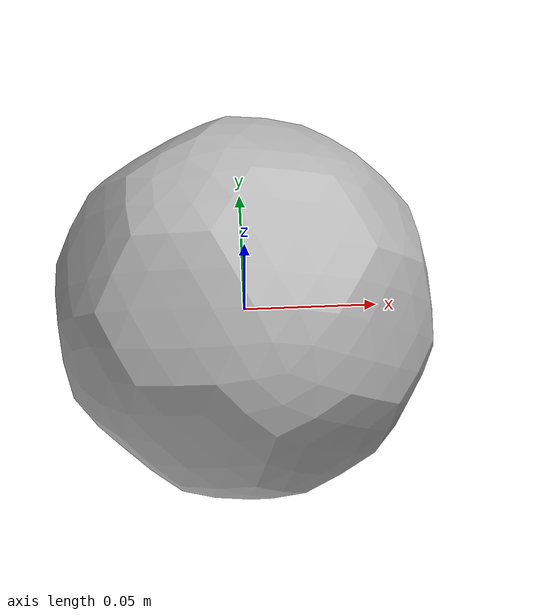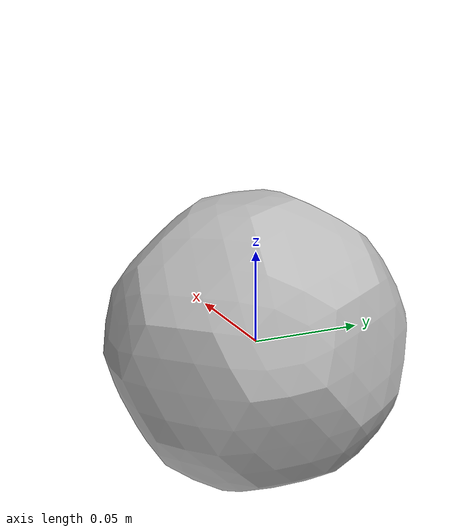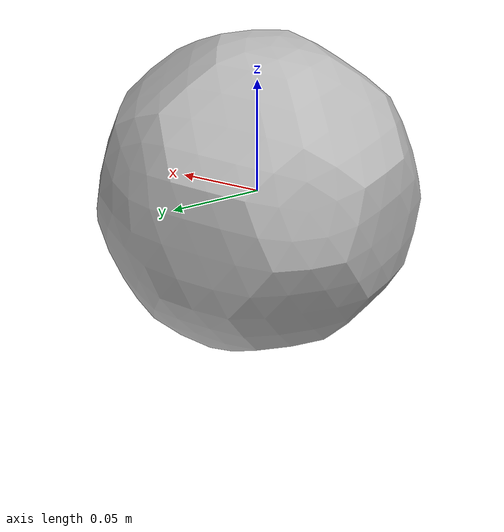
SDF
<?xml version="1.0" ?>
<sdf version="1.5">
  <model name="soccer_ball">
    <static>false</static>
    <link name="soccer_ball_link">
      <pose>0 0 0 0 0 0</pose>
      <inertial>
        <mass>0.200</mass>
        <!-- inertia based on solid sphere 2/5 mr^2 -->
        <inertia>
          <ixx>4.263e-4</ixx>
          <iyy>4.263e-4</iyy>
          <izz>4.263e-4</izz>
          <ixy>0</ixy>
          <ixz>0</ixz>
          <iyz>0</iyz>
        </inertia>
      </inertial>
      <collision name="collision">
        <geometry>
          <sphere>
            <radius>0.073</radius>
          </sphere>
        </geometry>
      </collision>
      <visual name="visual">
        <geometry>
          <mesh>
            <scale>0.073 0.073 0.073</scale>
            <uri>model://robocup_3Dsim_ball/meshes/ball.dae</uri>
          </mesh>
        </geometry>
      </visual>
    </link>
  </model>
</sdf>
